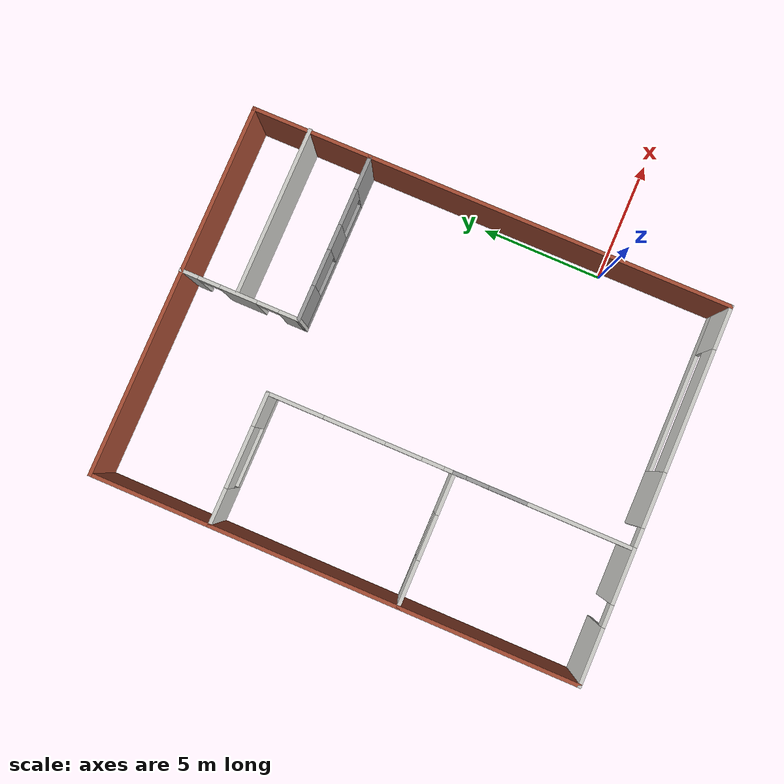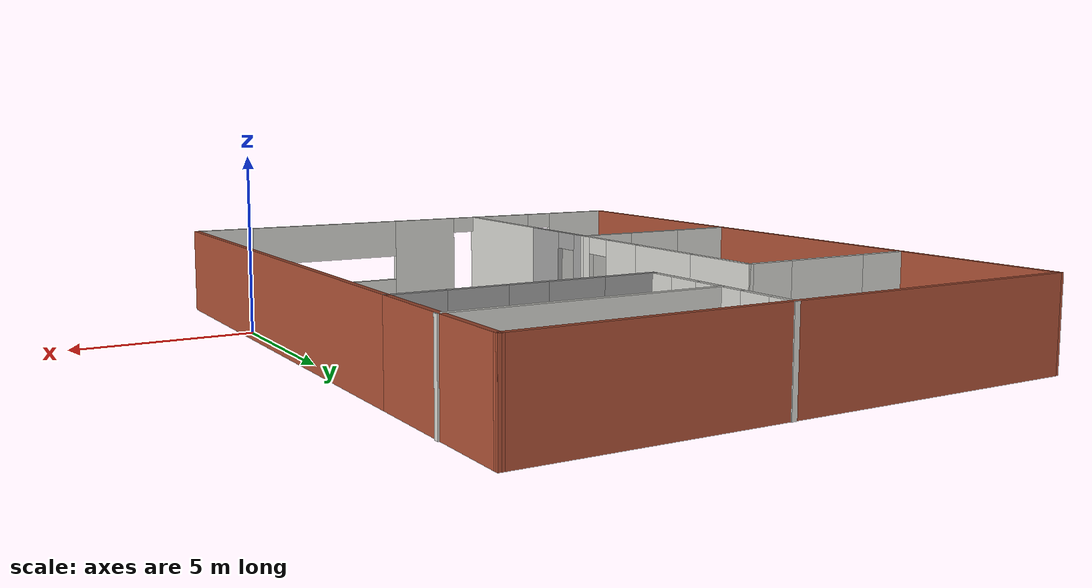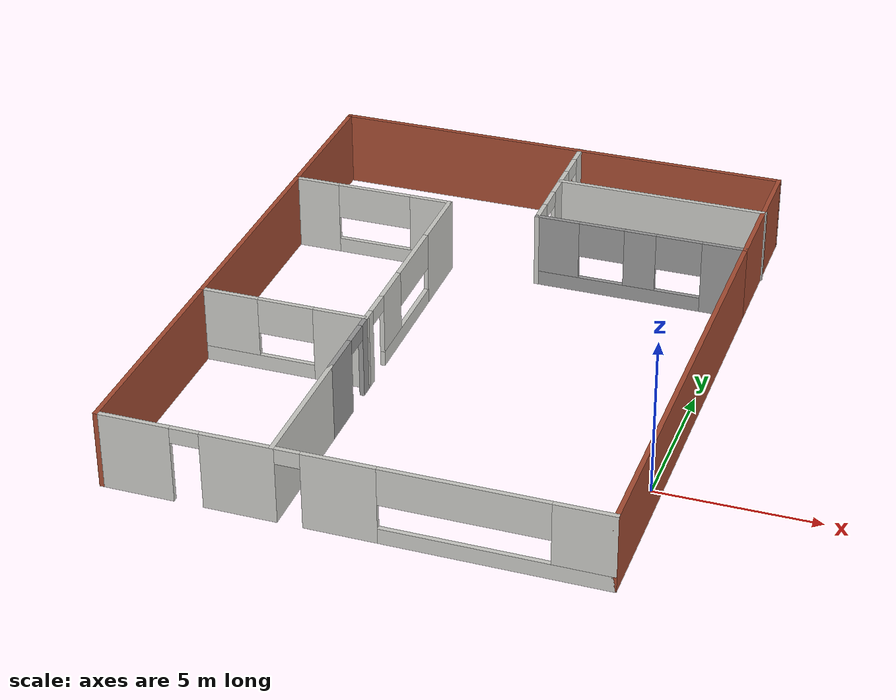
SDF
<?xml version='1.0'?>
<sdf version='1.6'>
  <model name='house'>
    <pose frame=''>-7.34625 5.10668 0 0 -0 0</pose>
    <link name='Wall_10'>
      <pose frame=''>-2.27041 -4.07512 0 0 -0 1.5708</pose>
      <visual name='Wall_10_Visual_0'>
        <pose frame=''>-0.723472 0 1.25 0 -0 0</pose>
        <geometry>
          <box>
            <size>1.55306 0.15 2.5</size>
          </box>
        </geometry>
        <material>
          <script>
            <uri>file://media/materials/scripts/gazebo.material</uri>
            <name>Gazebo/Grey</name>
          </script>
          <ambient>1 1 1 1</ambient>
        </material>
        <meta>
          <layer>0</layer>
        </meta>
      </visual>
      <collision name='Wall_10_Collision_0'>
        <geometry>
          <box>
            <size>1.55306 0.15 2.5</size>
          </box>
        </geometry>
        <pose frame=''>-0.723472 0 1.25 0 -0 0</pose>
      </collision>
      <visual name='Wall_10_Visual_1'>
        <pose frame=''>1.22653 0 1.25 0 -0 0</pose>
        <geometry>
          <box>
            <size>0.546944 0.15 2.5</size>
          </box>
        </geometry>
        <material>
          <script>
            <uri>file://media/materials/scripts/gazebo.material</uri>
            <name>Gazebo/Grey</name>
          </script>
          <ambient>1 1 1 1</ambient>
        </material>
        <meta>
          <layer>0</layer>
        </meta>
      </visual>
      <collision name='Wall_10_Collision_1'>
        <geometry>
          <box>
            <size>0.546944 0.15 2.5</size>
          </box>
        </geometry>
        <pose frame=''>1.22653 0 1.25 0 -0 0</pose>
      </collision>
      <visual name='Wall_10_Visual_2'>
        <pose frame=''>0.503056 0 2.25 0 -0 0</pose>
        <geometry>
          <box>
            <size>0.9 0.15 0.5</size>
          </box>
        </geometry>
        <material>
          <script>
            <uri>file://media/materials/scripts/gazebo.material</uri>
            <name>Gazebo/Grey</name>
          </script>
          <ambient>1 1 1 1</ambient>
        </material>
        <meta>
          <layer>0</layer>
        </meta>
      </visual>
      <collision name='Wall_10_Collision_2'>
        <geometry>
          <box>
            <size>0.9 0.15 0.5</size>
          </box>
        </geometry>
        <pose frame=''>0.503056 0 2.25 0 -0 0</pose>
      </collision>
    </link>
    <link name='Wall_11'>
      <pose frame=''>-4.94541 -2.65012 0 0 -0 3.14159</pose>
      <visual name='Wall_11_Visual_0'>
        <pose frame=''>-1.86454 0 1.25 0 -0 0</pose>
        <geometry>
          <box>
            <size>1.77092 0.15 2.5</size>
          </box>
        </geometry>
        <material>
          <script>
            <uri>file://media/materials/scripts/gazebo.material</uri>
            <name>Gazebo/CeilingTiled</name>
          </script>
          <ambient>1 1 1 1</ambient>
        </material>
        <meta>
          <layer>0</layer>
        </meta>
      </visual>
      <collision name='Wall_11_Collision_0'>
        <geometry>
          <box>
            <size>1.77092 0.15 2.5</size>
          </box>
        </geometry>
        <pose frame=''>-1.86454 0 1.25 0 -0 0</pose>
      </collision>
      <visual name='Wall_11_Visual_1'>
        <pose frame=''>0.885458 0 0.25 0 -0 0</pose>
        <geometry>
          <box>
            <size>3.72908 0.15 0.5</size>
          </box>
        </geometry>
        <material>
          <script>
            <uri>file://media/materials/scripts/gazebo.material</uri>
            <name>Gazebo/CeilingTiled</name>
          </script>
          <ambient>1 1 1 1</ambient>
        </material>
        <meta>
          <layer>0</layer>
        </meta>
      </visual>
      <collision name='Wall_11_Collision_1'>
        <geometry>
          <box>
            <size>3.72908 0.15 0.5</size>
          </box>
        </geometry>
        <pose frame=''>0.885458 0 0.25 0 -0 0</pose>
      </collision>
      <visual name='Wall_11_Visual_2'>
        <pose frame=''>1.78546 0 1.5 0 -0 0</pose>
        <geometry>
          <box>
            <size>1.92908 0.15 2</size>
          </box>
        </geometry>
        <material>
          <script>
            <uri>file://media/materials/scripts/gazebo.material</uri>
            <name>Gazebo/CeilingTiled</name>
          </script>
          <ambient>1 1 1 1</ambient>
        </material>
        <meta>
          <layer>0</layer>
        </meta>
      </visual>
      <collision name='Wall_11_Collision_2'>
        <geometry>
          <box>
            <size>1.92908 0.15 2</size>
          </box>
        </geometry>
        <pose frame=''>1.78546 0 1.5 0 -0 0</pose>
      </collision>
      <visual name='Wall_11_Visual_3'>
        <pose frame=''>-0.079083 0 1.9 0 -0 0</pose>
        <geometry>
          <box>
            <size>1.8 0.15 1.2</size>
          </box>
        </geometry>
        <material>
          <script>
            <uri>file://media/materials/scripts/gazebo.material</uri>
            <name>Gazebo/CeilingTiled</name>
          </script>
          <ambient>1 1 1 1</ambient>
        </material>
        <meta>
          <layer>0</layer>
        </meta>
      </visual>
      <collision name='Wall_11_Collision_3'>
        <geometry>
          <box>
            <size>1.8 0.15 1.2</size>
          </box>
        </geometry>
        <pose frame=''>-0.079083 0 1.9 0 -0 0</pose>
      </collision>
    </link>
    <link name='Wall_12'>
      <collision name='Wall_12_Collision'>
        <geometry>
          <box>
            <size>7.75 0.15 2.5</size>
          </box>
        </geometry>
        <pose frame=''>0 0 1.25 0 -0 0</pose>
      </collision>
      <visual name='Wall_12_Visual'>
        <pose frame=''>0 0 1.25 0 -0 0</pose>
        <geometry>
          <box>
            <size>7.75 0.15 2.5</size>
          </box>
        </geometry>
        <material>
          <script>
            <uri>file://media/materials/scripts/gazebo.material</uri>
            <name>Gazebo/Bricks</name>
          </script>
          <ambient>1 1 1 1</ambient>
        </material>
        <meta>
          <layer>0</layer>
        </meta>
      </visual>
      <pose frame=''>-7.62041 1.14988 0 0 -0 1.5708</pose>
    </link>
    <link name='Wall_13'>
      <pose frame=''>-4.94541 4.94988 0 0 -0 0</pose>
      <visual name='Wall_13_Visual_0'>
        <pose frame=''>-1.96046 0 1.25 0 -0 0</pose>
        <geometry>
          <box>
            <size>1.57908 0.15 2.5</size>
          </box>
        </geometry>
        <material>
          <script>
            <uri>file://media/materials/scripts/gazebo.material</uri>
            <name>Gazebo/CeilingTiled</name>
          </script>
          <ambient>1 1 1 1</ambient>
        </material>
        <meta>
          <layer>0</layer>
        </meta>
      </visual>
      <collision name='Wall_13_Collision_0'>
        <geometry>
          <box>
            <size>1.57908 0.15 2.5</size>
          </box>
        </geometry>
        <pose frame=''>-1.96046 0 1.25 0 -0 0</pose>
      </collision>
      <visual name='Wall_13_Visual_1'>
        <pose frame=''>0.789542 0 0.25 0 -0 0</pose>
        <geometry>
          <box>
            <size>3.92092 0.15 0.5</size>
          </box>
        </geometry>
        <material>
          <script>
            <uri>file://media/materials/scripts/gazebo.material</uri>
            <name>Gazebo/CeilingTiled</name>
          </script>
          <ambient>1 1 1 1</ambient>
        </material>
        <meta>
          <layer>0</layer>
        </meta>
      </visual>
      <collision name='Wall_13_Collision_1'>
        <geometry>
          <box>
            <size>3.92092 0.15 0.5</size>
          </box>
        </geometry>
        <pose frame=''>0.789542 0 0.25 0 -0 0</pose>
      </collision>
      <visual name='Wall_13_Visual_2'>
        <pose frame=''>2.03954 0 1.5 0 -0 0</pose>
        <geometry>
          <box>
            <size>1.42092 0.15 2</size>
          </box>
        </geometry>
        <material>
          <script>
            <uri>file://media/materials/scripts/gazebo.material</uri>
            <name>Gazebo/CeilingTiled</name>
          </script>
          <ambient>1 1 1 1</ambient>
        </material>
        <meta>
          <layer>0</layer>
        </meta>
      </visual>
      <collision name='Wall_13_Collision_2'>
        <geometry>
          <box>
            <size>1.42092 0.15 2</size>
          </box>
        </geometry>
        <pose frame=''>2.03954 0 1.5 0 -0 0</pose>
      </collision>
      <visual name='Wall_13_Visual_3'>
        <pose frame=''>0.079083 0 1.9 0 -0 0</pose>
        <geometry>
          <box>
            <size>2.5 0.15 1.2</size>
          </box>
        </geometry>
        <material>
          <script>
            <uri>file://media/materials/scripts/gazebo.material</uri>
            <name>Gazebo/CeilingTiled</name>
          </script>
          <ambient>1 1 1 1</ambient>
        </material>
        <meta>
          <layer>0</layer>
        </meta>
      </visual>
      <collision name='Wall_13_Collision_3'>
        <geometry>
          <box>
            <size>2.5 0.15 1.2</size>
          </box>
        </geometry>
        <pose frame=''>0.079083 0 1.9 0 -0 0</pose>
      </collision>
    </link>
    <link name='Wall_14'>
      <pose frame=''>-2.27041 1.14988 0 0 -0 -1.5708</pose>
      <visual name='Wall_14_Visual_0'>
        <pose frame=''>-2.69133 0 1.25 0 -0 0</pose>
        <geometry>
          <box>
            <size>2.36734 0.15 2.5</size>
          </box>
        </geometry>
        <material>
          <script>
            <uri>file://media/materials/scripts/gazebo.material</uri>
            <name>Gazebo/CeilingTiled</name>
          </script>
          <ambient>1 1 1 1</ambient>
        </material>
        <meta>
          <layer>0</layer>
        </meta>
      </visual>
      <collision name='Wall_14_Collision_0'>
        <geometry>
          <box>
            <size>2.36734 0.15 2.5</size>
          </box>
        </geometry>
        <pose frame=''>-2.69133 0 1.25 0 -0 0</pose>
      </collision>
      <visual name='Wall_14_Visual_1'>
        <pose frame=''>3.62789 0 1.25 0 -0 0</pose>
        <geometry>
          <box>
            <size>0.494227 0.15 2.5</size>
          </box>
        </geometry>
        <material>
          <script>
            <uri>file://media/materials/scripts/gazebo.material</uri>
            <name>Gazebo/CeilingTiled</name>
          </script>
          <ambient>1 1 1 1</ambient>
        </material>
        <meta>
          <layer>0</layer>
        </meta>
      </visual>
      <collision name='Wall_14_Collision_1'>
        <geometry>
          <box>
            <size>0.494227 0.15 2.5</size>
          </box>
        </geometry>
        <pose frame=''>3.62789 0 1.25 0 -0 0</pose>
      </collision>
      <visual name='Wall_14_Visual_2'>
        <pose frame=''>0.486554 0 0.25 0 -0 0</pose>
        <geometry>
          <box>
            <size>3.98844 0.15 0.5</size>
          </box>
        </geometry>
        <material>
          <script>
            <uri>file://media/materials/scripts/gazebo.material</uri>
            <name>Gazebo/CeilingTiled</name>
          </script>
          <ambient>1 1 1 1</ambient>
        </material>
        <meta>
          <layer>0</layer>
        </meta>
      </visual>
      <collision name='Wall_14_Collision_2'>
        <geometry>
          <box>
            <size>3.98844 0.15 0.5</size>
          </box>
        </geometry>
        <pose frame=''>0.486554 0 0.25 0 -0 0</pose>
      </collision>
      <visual name='Wall_14_Visual_3'>
        <pose frame=''>1.73655 0 1.5 0 -0 0</pose>
        <geometry>
          <box>
            <size>1.48844 0.15 2</size>
          </box>
        </geometry>
        <material>
          <script>
            <uri>file://media/materials/scripts/gazebo.material</uri>
            <name>Gazebo/CeilingTiled</name>
          </script>
          <ambient>1 1 1 1</ambient>
        </material>
        <meta>
          <layer>0</layer>
        </meta>
      </visual>
      <collision name='Wall_14_Collision_3'>
        <geometry>
          <box>
            <size>1.48844 0.15 2</size>
          </box>
        </geometry>
        <pose frame=''>1.73655 0 1.5 0 -0 0</pose>
      </collision>
      <visual name='Wall_14_Visual_4'>
        <pose frame=''>-0.257665 0 1.9 0 -0 0</pose>
        <geometry>
          <box>
            <size>2.5 0.15 1.2</size>
          </box>
        </geometry>
        <material>
          <script>
            <uri>file://media/materials/scripts/gazebo.material</uri>
            <name>Gazebo/CeilingTiled</name>
          </script>
          <ambient>1 1 1 1</ambient>
        </material>
        <meta>
          <layer>0</layer>
        </meta>
      </visual>
      <collision name='Wall_14_Collision_4'>
        <geometry>
          <box>
            <size>2.5 0.15 1.2</size>
          </box>
        </geometry>
        <pose frame=''>-0.257665 0 1.9 0 -0 0</pose>
      </collision>
      <visual name='Wall_14_Visual_5'>
        <pose frame=''>2.93077 0 2.25 0 -0 0</pose>
        <geometry>
          <box>
            <size>0.9 0.15 0.5</size>
          </box>
        </geometry>
        <material>
          <script>
            <uri>file://media/materials/scripts/gazebo.material</uri>
            <name>Gazebo/CeilingTiled</name>
          </script>
          <ambient>1 1 1 1</ambient>
        </material>
        <meta>
          <layer>0</layer>
        </meta>
      </visual>
      <collision name='Wall_14_Collision_5'>
        <geometry>
          <box>
            <size>0.9 0.15 0.5</size>
          </box>
        </geometry>
        <pose frame=''>2.93077 0 2.25 0 -0 0</pose>
      </collision>
    </link>
    <link name='Wall_21'>
      <pose frame=''>-4.94541 -9.85012 0 0 -0 3.14159</pose>
      <visual name='Wall_21_Visual_0'>
        <pose frame=''>-1.61931 0 1.25 0 -0 0</pose>
        <geometry>
          <box>
            <size>2.26137 0.15 2.5</size>
          </box>
        </geometry>
        <material>
          <script>
            <uri>file://media/materials/scripts/gazebo.material</uri>
            <name>Gazebo/CeilingTiled</name>
          </script>
          <ambient>1 1 1 1</ambient>
        </material>
        <meta>
          <layer>0</layer>
        </meta>
      </visual>
      <collision name='Wall_21_Collision_0'>
        <geometry>
          <box>
            <size>2.26137 0.15 2.5</size>
          </box>
        </geometry>
        <pose frame=''>-1.61931 0 1.25 0 -0 0</pose>
      </collision>
      <visual name='Wall_21_Visual_1'>
        <pose frame=''>1.58069 0 1.25 0 -0 0</pose>
        <geometry>
          <box>
            <size>2.33863 0.15 2.5</size>
          </box>
        </geometry>
        <material>
          <script>
            <uri>file://media/materials/scripts/gazebo.material</uri>
            <name>Gazebo/CeilingTiled</name>
          </script>
          <ambient>1 1 1 1</ambient>
        </material>
        <meta>
          <layer>0</layer>
        </meta>
      </visual>
      <collision name='Wall_21_Collision_1'>
        <geometry>
          <box>
            <size>2.33863 0.15 2.5</size>
          </box>
        </geometry>
        <pose frame=''>1.58069 0 1.25 0 -0 0</pose>
      </collision>
      <visual name='Wall_21_Visual_2'>
        <pose frame=''>-0.038628 0 2.25 0 -0 0</pose>
        <geometry>
          <box>
            <size>0.9 0.15 0.5</size>
          </box>
        </geometry>
        <material>
          <script>
            <uri>file://media/materials/scripts/gazebo.material</uri>
            <name>Gazebo/CeilingTiled</name>
          </script>
          <ambient>1 1 1 1</ambient>
        </material>
        <meta>
          <layer>0</layer>
        </meta>
      </visual>
      <collision name='Wall_21_Collision_2'>
        <geometry>
          <box>
            <size>0.9 0.15 0.5</size>
          </box>
        </geometry>
        <pose frame=''>-0.038628 0 2.25 0 -0 0</pose>
      </collision>
    </link>
    <link name='Wall_22'>
      <collision name='Wall_22_Collision'>
        <geometry>
          <box>
            <size>7.35 0.15 2.5</size>
          </box>
        </geometry>
        <pose frame=''>0 0 1.25 0 -0 0</pose>
      </collision>
      <visual name='Wall_22_Visual'>
        <pose frame=''>0 0 1.25 0 -0 0</pose>
        <geometry>
          <box>
            <size>7.35 0.15 2.5</size>
          </box>
        </geometry>
        <material>
          <script>
            <uri>file://media/materials/scripts/gazebo.material</uri>
            <name>Gazebo/Bricks</name>
          </script>
          <ambient>1 1 1 1</ambient>
        </material>
        <meta>
          <layer>0</layer>
        </meta>
      </visual>
      <pose frame=''>-7.62041 -6.25012 0 0 -0 1.5708</pose>
    </link>
    <link name='Wall_24'>
      <collision name='Wall_24_Collision'>
        <geometry>
          <box>
            <size>5 0.15 2.5</size>
          </box>
        </geometry>
        <pose frame=''>0 0 1.25 0 -0 0</pose>
      </collision>
      <visual name='Wall_24_Visual'>
        <pose frame=''>0 0 1.25 0 -0 0</pose>
        <geometry>
          <box>
            <size>5 0.15 2.5</size>
          </box>
        </geometry>
        <material>
          <script>
            <uri>file://media/materials/scripts/gazebo.material</uri>
            <name>Gazebo/Bricks</name>
          </script>
          <ambient>1 1 1 1</ambient>
        </material>
        <meta>
          <layer>0</layer>
        </meta>
      </visual>
      <pose frame=''>-7.62041 7.37488 0 0 -0 1.5708</pose>
    </link>
    <link name='Wall_28'>
      <collision name='Wall_28_Collision'>
        <geometry>
          <box>
            <size>5 0.15 2.5</size>
          </box>
        </geometry>
        <pose frame=''>0 0 1.25 0 -0 0</pose>
      </collision>
      <visual name='Wall_28_Visual'>
        <pose frame=''>0 0 1.25 0 -0 0</pose>
        <geometry>
          <box>
            <size>5 0.15 2.5</size>
          </box>
        </geometry>
        <material>
          <script>
            <uri>file://media/materials/scripts/gazebo.material</uri>
            <name>Gazebo/Bricks</name>
          </script>
          <ambient>1 1 1 1</ambient>
        </material>
        <meta>
          <layer>0</layer>
        </meta>
      </visual>
      <pose frame=''>7.57959 7.42488 0 0 -0 1.5708</pose>
    </link>
    <link name='Wall_29'>
      <collision name='Wall_29_Collision'>
        <geometry>
          <box>
            <size>15.3501 0.15 2.5</size>
          </box>
        </geometry>
        <pose frame=''>0 0 1.25 0 -0 0</pose>
      </collision>
      <visual name='Wall_29_Visual'>
        <pose frame=''>0 0 1.25 0 -0 0</pose>
        <geometry>
          <box>
            <size>15.3501 0.15 2.5</size>
          </box>
        </geometry>
        <material>
          <script>
            <uri>file://media/materials/scripts/gazebo.material</uri>
            <name>Gazebo/Bricks</name>
          </script>
          <ambient>1 1 1 1</ambient>
        </material>
        <meta>
          <layer>0</layer>
        </meta>
      </visual>
      <pose frame=''>-0.02041 9.82488 0 0 -0 -3.1383</pose>
    </link>
    <link name='Wall_31'>
      <pose frame=''>0.72959 7.42488 0 0 -0 1.5708</pose>
      <visual name='Wall_31_Visual_0'>
        <pose frame=''>-2.05633 0 1.25 0 -0 0</pose>
        <geometry>
          <box>
            <size>0.887335 0.15 2.5</size>
          </box>
        </geometry>
        <material>
          <script>
            <uri>file://media/materials/scripts/gazebo.material</uri>
            <name>Gazebo/CeilingTiled</name>
          </script>
          <ambient>1 1 1 1</ambient>
        </material>
        <meta>
          <layer>0</layer>
        </meta>
      </visual>
      <collision name='Wall_31_Collision_0'>
        <geometry>
          <box>
            <size>0.887335 0.15 2.5</size>
          </box>
        </geometry>
        <pose frame=''>-2.05633 0 1.25 0 -0 0</pose>
      </collision>
      <visual name='Wall_31_Visual_1'>
        <pose frame=''>0.051002 0 1.25 0 -0 0</pose>
        <geometry>
          <box>
            <size>1.52734 0.15 2.5</size>
          </box>
        </geometry>
        <material>
          <script>
            <uri>file://media/materials/scripts/gazebo.material</uri>
            <name>Gazebo/CeilingTiled</name>
          </script>
          <ambient>1 1 1 1</ambient>
        </material>
        <meta>
          <layer>0</layer>
        </meta>
      </visual>
      <collision name='Wall_31_Collision_1'>
        <geometry>
          <box>
            <size>1.52734 0.15 2.5</size>
          </box>
        </geometry>
        <pose frame=''>0.051002 0 1.25 0 -0 0</pose>
      </collision>
      <visual name='Wall_31_Visual_2'>
        <pose frame=''>2.10733 0 1.25 0 -0 0</pose>
        <geometry>
          <box>
            <size>0.785331 0.15 2.5</size>
          </box>
        </geometry>
        <material>
          <script>
            <uri>file://media/materials/scripts/gazebo.material</uri>
            <name>Gazebo/CeilingTiled</name>
          </script>
          <ambient>1 1 1 1</ambient>
        </material>
        <meta>
          <layer>0</layer>
        </meta>
      </visual>
      <collision name='Wall_31_Collision_2'>
        <geometry>
          <box>
            <size>0.785331 0.15 2.5</size>
          </box>
        </geometry>
        <pose frame=''>2.10733 0 1.25 0 -0 0</pose>
      </collision>
      <visual name='Wall_31_Visual_3'>
        <pose frame=''>-1.16267 0 2.25 0 -0 0</pose>
        <geometry>
          <box>
            <size>0.9 0.15 0.5</size>
          </box>
        </geometry>
        <material>
          <script>
            <uri>file://media/materials/scripts/gazebo.material</uri>
            <name>Gazebo/CeilingTiled</name>
          </script>
          <ambient>1 1 1 1</ambient>
        </material>
        <meta>
          <layer>0</layer>
        </meta>
      </visual>
      <collision name='Wall_31_Collision_3'>
        <geometry>
          <box>
            <size>0.9 0.15 0.5</size>
          </box>
        </geometry>
        <pose frame=''>-1.16267 0 2.25 0 -0 0</pose>
      </collision>
      <visual name='Wall_31_Visual_4'>
        <pose frame=''>1.26467 0 2.25 0 -0 0</pose>
        <geometry>
          <box>
            <size>0.9 0.15 0.5</size>
          </box>
        </geometry>
        <material>
          <script>
            <uri>file://media/materials/scripts/gazebo.material</uri>
            <name>Gazebo/CeilingTiled</name>
          </script>
          <ambient>1 1 1 1</ambient>
        </material>
        <meta>
          <layer>0</layer>
        </meta>
      </visual>
      <collision name='Wall_31_Collision_4'>
        <geometry>
          <box>
            <size>0.9 0.15 0.5</size>
          </box>
        </geometry>
        <pose frame=''>1.26467 0 2.25 0 -0 0</pose>
      </collision>
    </link>
    <link name='Wall_35'>
      <collision name='Wall_35_Collision'>
        <geometry>
          <box>
            <size>7 0.15 2.5</size>
          </box>
        </geometry>
        <pose frame=''>0 0 1.25 0 -0 0</pose>
      </collision>
      <visual name='Wall_35_Visual'>
        <pose frame=''>0 0 1.25 0 -0 0</pose>
        <geometry>
          <box>
            <size>7 0.15 2.5</size>
          </box>
        </geometry>
        <material>
          <script>
            <uri>file://media/materials/scripts/gazebo.material</uri>
            <name>Gazebo/CeilingTiled</name>
          </script>
          <ambient>1 1 1 1</ambient>
        </material>
        <meta>
          <layer>0</layer>
        </meta>
      </visual>
      <pose frame=''>4.19566 7.53969 0 0 -0 0</pose>
    </link>
    <link name='Wall_4'>
      <pose frame=''>2.65459 -9.85012 0 0 -0 0</pose>
      <visual name='Wall_4_Visual_0'>
        <pose frame=''>-4.99212 0 1.25 0 -0 0</pose>
        <geometry>
          <box>
            <size>0.015765 0.15 2.5</size>
          </box>
        </geometry>
        <material>
          <script>
            <uri>file://media/materials/scripts/gazebo.material</uri>
            <name>Gazebo/CeilingTiled</name>
          </script>
          <ambient>1 1 1 1</ambient>
        </material>
        <meta>
          <layer>0</layer>
        </meta>
      </visual>
      <collision name='Wall_4_Collision_0'>
        <geometry>
          <box>
            <size>0.015765 0.15 2.5</size>
          </box>
        </geometry>
        <pose frame=''>-4.99212 0 1.25 0 -0 0</pose>
      </collision>
      <visual name='Wall_4_Visual_1'>
        <pose frame=''>-2.96656 0 1.25 0 -0 0</pose>
        <geometry>
          <box>
            <size>2.23535 0.15 2.5</size>
          </box>
        </geometry>
        <material>
          <script>
            <uri>file://media/materials/scripts/gazebo.material</uri>
            <name>Gazebo/CeilingTiled</name>
          </script>
          <ambient>1 1 1 1</ambient>
        </material>
        <meta>
          <layer>0</layer>
        </meta>
      </visual>
      <collision name='Wall_4_Collision_1'>
        <geometry>
          <box>
            <size>2.23535 0.15 2.5</size>
          </box>
        </geometry>
        <pose frame=''>-2.96656 0 1.25 0 -0 0</pose>
      </collision>
      <visual name='Wall_4_Visual_2'>
        <pose frame=''>1.57556 0 0.25 0 -0 0</pose>
        <geometry>
          <box>
            <size>6.84889 0.15 0.5</size>
          </box>
        </geometry>
        <material>
          <script>
            <uri>file://media/materials/scripts/gazebo.material</uri>
            <name>Gazebo/CeilingTiled</name>
          </script>
          <ambient>1 1 1 1</ambient>
        </material>
        <meta>
          <layer>0</layer>
        </meta>
      </visual>
      <collision name='Wall_4_Collision_2'>
        <geometry>
          <box>
            <size>6.84889 0.15 0.5</size>
          </box>
        </geometry>
        <pose frame=''>1.57556 0 0.25 0 -0 0</pose>
      </collision>
      <visual name='Wall_4_Visual_3'>
        <pose frame=''>4.07555 0 1.5 0 -0 0</pose>
        <geometry>
          <box>
            <size>1.84889 0.15 2</size>
          </box>
        </geometry>
        <material>
          <script>
            <uri>file://media/materials/scripts/gazebo.material</uri>
            <name>Gazebo/CeilingTiled</name>
          </script>
          <ambient>1 1 1 1</ambient>
        </material>
        <meta>
          <layer>0</layer>
        </meta>
      </visual>
      <collision name='Wall_4_Collision_3'>
        <geometry>
          <box>
            <size>1.84889 0.15 2</size>
          </box>
        </geometry>
        <pose frame=''>4.07555 0 1.5 0 -0 0</pose>
      </collision>
      <visual name='Wall_4_Visual_4'>
        <pose frame=''>0.65111 0 1.9 0 -0 0</pose>
        <geometry>
          <box>
            <size>5 0.15 1.2</size>
          </box>
        </geometry>
        <material>
          <script>
            <uri>file://media/materials/scripts/gazebo.material</uri>
            <name>Gazebo/CeilingTiled</name>
          </script>
          <ambient>1 1 1 1</ambient>
        </material>
        <meta>
          <layer>0</layer>
        </meta>
      </visual>
      <collision name='Wall_4_Collision_4'>
        <geometry>
          <box>
            <size>5 0.15 1.2</size>
          </box>
        </geometry>
        <pose frame=''>0.65111 0 1.9 0 -0 0</pose>
      </collision>
      <visual name='Wall_4_Visual_5'>
        <pose frame=''>-4.53423 0 2.25 0 -0 0</pose>
        <geometry>
          <box>
            <size>0.9 0.15 0.5</size>
          </box>
        </geometry>
        <material>
          <script>
            <uri>file://media/materials/scripts/gazebo.material</uri>
            <name>Gazebo/CeilingTiled</name>
          </script>
          <ambient>1 1 1 1</ambient>
        </material>
        <meta>
          <layer>0</layer>
        </meta>
      </visual>
      <collision name='Wall_4_Collision_5'>
        <geometry>
          <box>
            <size>0.9 0.15 0.5</size>
          </box>
        </geometry>
        <pose frame=''>-4.53423 0 2.25 0 -0 0</pose>
      </collision>
    </link>
    <link name='Wall_5'>
      <collision name='Wall_5_Collision'>
        <geometry>
          <box>
            <size>15 0.15 2.5</size>
          </box>
        </geometry>
        <pose frame=''>0 0 1.25 0 -0 0</pose>
      </collision>
      <visual name='Wall_5_Visual'>
        <pose frame=''>0 0 1.25 0 -0 0</pose>
        <geometry>
          <box>
            <size>15 0.15 2.5</size>
          </box>
        </geometry>
        <material>
          <script>
            <uri>file://media/materials/scripts/gazebo.material</uri>
            <name>Gazebo/Bricks</name>
          </script>
          <ambient>1 1 1 1</ambient>
        </material>
        <meta>
          <layer>0</layer>
        </meta>
      </visual>
      <pose frame=''>7.57959 -2.42512 0 0 -0 1.5708</pose>
    </link>
    <link name='Wall_7'>
      <pose frame=''>4.15459 4.99988 0 0 -0 3.14159</pose>
      <visual name='Wall_7_Visual_0'>
        <pose frame=''>-2.77263 0 1.25 0 -0 0</pose>
        <geometry>
          <box>
            <size>1.45474 0.15 2.5</size>
          </box>
        </geometry>
        <material>
          <script>
            <uri>file://media/materials/scripts/gazebo.material</uri>
            <name>Gazebo/Grey</name>
          </script>
          <ambient>1 1 1 1</ambient>
        </material>
        <meta>
          <layer>0</layer>
        </meta>
      </visual>
      <collision name='Wall_7_Collision_0'>
        <geometry>
          <box>
            <size>1.45474 0.15 2.5</size>
          </box>
        </geometry>
        <pose frame=''>-2.77263 0 1.25 0 -0 0</pose>
      </collision>
      <visual name='Wall_7_Visual_1'>
        <pose frame=''>0.727372 0 0.25 0 -0 0</pose>
        <geometry>
          <box>
            <size>5.54526 0.15 0.5</size>
          </box>
        </geometry>
        <material>
          <script>
            <uri>file://media/materials/scripts/gazebo.material</uri>
            <name>Gazebo/Grey</name>
          </script>
          <ambient>1 1 1 1</ambient>
        </material>
        <meta>
          <layer>0</layer>
        </meta>
      </visual>
      <collision name='Wall_7_Collision_1'>
        <geometry>
          <box>
            <size>5.54526 0.15 0.5</size>
          </box>
        </geometry>
        <pose frame=''>0.727372 0 0.25 0 -0 0</pose>
      </collision>
      <visual name='Wall_7_Visual_2'>
        <pose frame=''>-0.020905 0 1.5 0 -0 0</pose>
        <geometry>
          <box>
            <size>1.0487 0.15 2</size>
          </box>
        </geometry>
        <material>
          <script>
            <uri>file://media/materials/scripts/gazebo.material</uri>
            <name>Gazebo/Grey</name>
          </script>
          <ambient>1 1 1 1</ambient>
        </material>
        <meta>
          <layer>0</layer>
        </meta>
      </visual>
      <collision name='Wall_7_Collision_2'>
        <geometry>
          <box>
            <size>1.0487 0.15 2</size>
          </box>
        </geometry>
        <pose frame=''>-0.020905 0 1.5 0 -0 0</pose>
      </collision>
      <visual name='Wall_7_Visual_3'>
        <pose frame=''>2.75172 0 1.5 0 -0 0</pose>
        <geometry>
          <box>
            <size>1.49655 0.15 2</size>
          </box>
        </geometry>
        <material>
          <script>
            <uri>file://media/materials/scripts/gazebo.material</uri>
            <name>Gazebo/Grey</name>
          </script>
          <ambient>1 1 1 1</ambient>
        </material>
        <meta>
          <layer>0</layer>
        </meta>
      </visual>
      <collision name='Wall_7_Collision_3'>
        <geometry>
          <box>
            <size>1.49655 0.15 2</size>
          </box>
        </geometry>
        <pose frame=''>2.75172 0 1.5 0 -0 0</pose>
      </collision>
      <visual name='Wall_7_Visual_4'>
        <pose frame=''>-1.29526 0 1.9 0 -0 0</pose>
        <geometry>
          <box>
            <size>1.5 0.15 1.2</size>
          </box>
        </geometry>
        <material>
          <script>
            <uri>file://media/materials/scripts/gazebo.material</uri>
            <name>Gazebo/Grey</name>
          </script>
          <ambient>1 1 1 1</ambient>
        </material>
        <meta>
          <layer>0</layer>
        </meta>
      </visual>
      <collision name='Wall_7_Collision_4'>
        <geometry>
          <box>
            <size>1.5 0.15 1.2</size>
          </box>
        </geometry>
        <pose frame=''>-1.29526 0 1.9 0 -0 0</pose>
      </collision>
      <visual name='Wall_7_Visual_5'>
        <pose frame=''>1.25345 0 1.9 0 -0 0</pose>
        <geometry>
          <box>
            <size>1.5 0.15 1.2</size>
          </box>
        </geometry>
        <material>
          <script>
            <uri>file://media/materials/scripts/gazebo.material</uri>
            <name>Gazebo/Grey</name>
          </script>
          <ambient>1 1 1 1</ambient>
        </material>
        <meta>
          <layer>0</layer>
        </meta>
      </visual>
      <collision name='Wall_7_Collision_5'>
        <geometry>
          <box>
            <size>1.5 0.15 1.2</size>
          </box>
        </geometry>
        <pose frame=''>1.25345 0 1.9 0 -0 0</pose>
      </collision>
    </link>
    <link name='Wall_9'>
      <collision name='Wall_9_Collision'>
        <geometry>
          <box>
            <size>4.5 0.15 2.5</size>
          </box>
        </geometry>
        <pose frame=''>0 0 1.25 0 -0 0</pose>
      </collision>
      <visual name='Wall_9_Visual'>
        <pose frame=''>0 0 1.25 0 -0 0</pose>
        <geometry>
          <box>
            <size>4.5 0.15 2.5</size>
          </box>
        </geometry>
        <material>
          <script>
            <uri>file://media/materials/scripts/gazebo.material</uri>
            <name>Gazebo/CeilingTiled</name>
          </script>
          <ambient>1 1 1 1</ambient>
        </material>
        <meta>
          <layer>0</layer>
        </meta>
      </visual>
      <pose frame=''>-2.27041 -7.67512 0 0 -0 1.5708</pose>
    </link>
    <static>1</static>
  </model>
</sdf>
